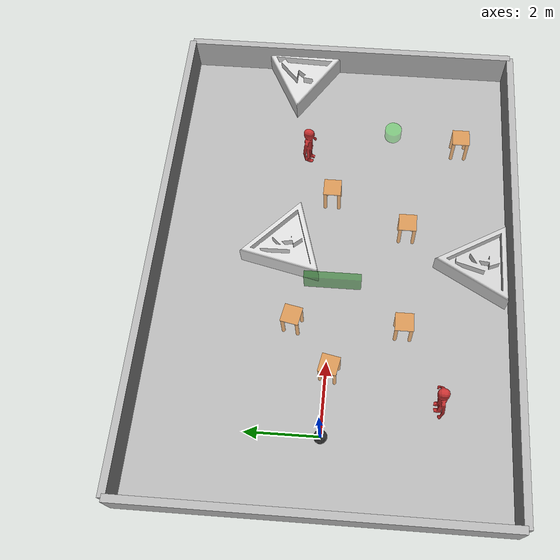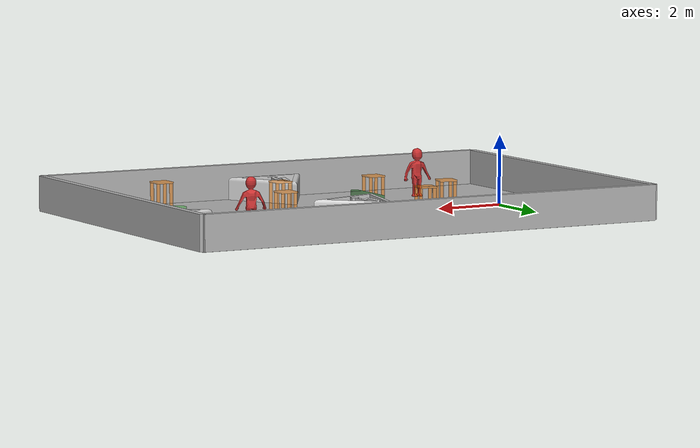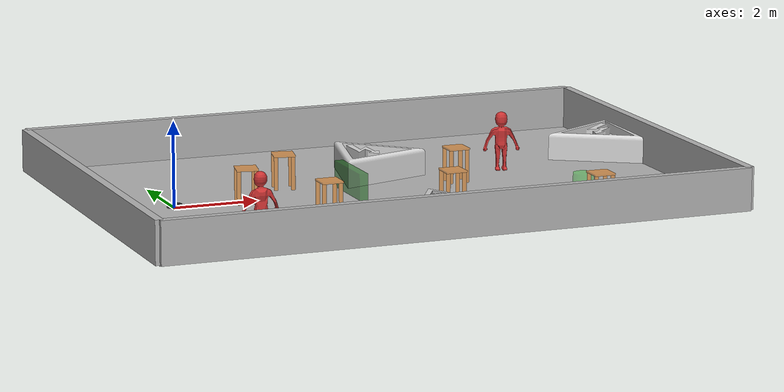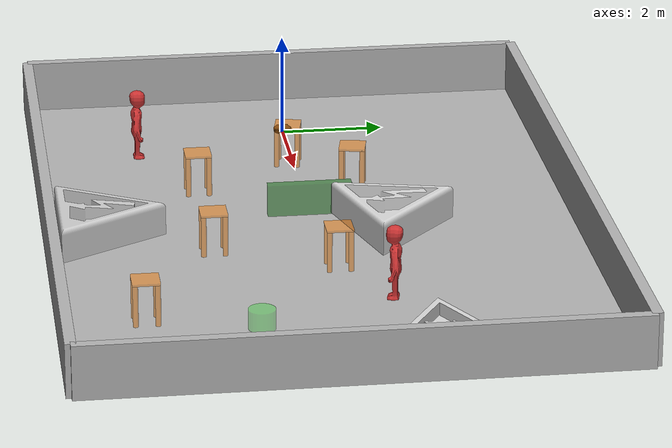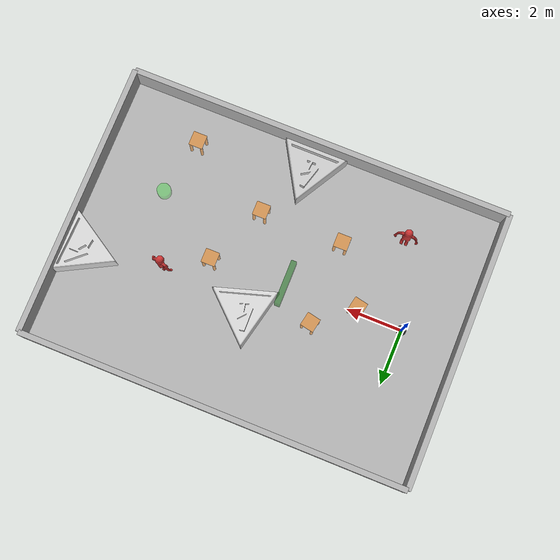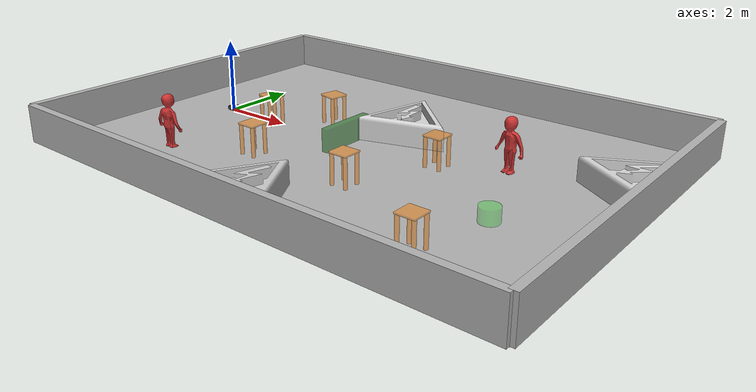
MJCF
<mujoco model="jackal_safe_navigation">
	<compiler angle="radian" meshdir="meshes/" />

    <size njmax="3000" nconmax="1000" />
    <option gravity="0 0 -9.8"/>
	<option timestep="0.002">
		<flag warmstart="enable"></flag>
	</option>

    <default>
        <geom condim="6" density="5" rgba="0.7 0.7 0.7 1" size=".05" type="sphere"/>
        <joint damping=".001"/>
        <site size="0.032" type="sphere"/>
        <velocity ctrlrange="-1 1" ctrllimited="true" forcerange="-1 1" forcelimited="true"/>
    </default>

    <asset>
        <!--Meshes-->
        <mesh name="base" file="tbot.stl" />
        <mesh name="triangle_mesh" file="triangle.stl"/>
        <mesh name="person" file="person4.stl"/>

        <!--Textures-->
        <texture name="floor_tex"   type="2d" builtin="checker" rgb1="0.7 0.7 0.7" rgb2="0.9 0.9 0.9" width="100" height="100" />

        <!--Materials-->
        <material name="floor_mat" texture="floor_tex" shininess="0.3" texrepeat="7 5" specular="0.5" reflectance="0.2" />
        <material name="wall_mat" rgba="0.7 0.7 0.7 1" shininess="0.8" specular="0.7" reflectance="0.5" />
        <material name="bench_mat" texture="floor_tex" shininess="0.1" specular="0.5" reflectance="0.2"/>
    </asset>

	<worldbody>
		<light directional="true" ambient="0.2 0.2 0.2" diffuse="0.4 0.4 0.4" specular="0.1 0.1 0.1" castshadow="false" pos="0 0 4" dir="0 0 -1" name="light0" />

        <!-- Floor Property -->
        <geom name='floor' material="floor_mat" pos='5 0 0' size='7.0 5.0 0.1'  type='plane' condim="3"/>

        <!-- Wall Property -->
        <geom name='wall1' material="wall_mat" pos='5.0 5 0.5' size='7 0.1 0.5'  type='box' condim="6" group="2"/>
        <geom name='wall2' material="wall_mat" pos='5.0 -5 0.5' size='7 0.1 0.5'  type='box' condim="6" group="2"/>
        <geom name='wall3' material="wall_mat" pos='12 0 0.5' size='0.1 5 0.5'  type='box' condim="6" group="2"/>
        <geom name='wall4' material="wall_mat" pos='-2.0 0 0.5' size='0.1 5 0.5' type='box' condim="6" group="2"/>

		<!-- camera: front view -->
		<camera mode="fixed" name="frontview" pos="3.0 0 1.85" quat="0.56 0.43 0.43 0.56"/>

		<!-- Robot -->
		<body name="robot" pos="0 0 0.06344">
            <site name="robot" pos="0 0 0"/>
            <joint type="free" name="robot" damping="0"/>

            <geom pos="0 0 0" quat="1 0 0 0" type="mesh" contype="0" conaffinity="0" group="1" rgba="0.15 0.15 0.15 1" mesh="base"/>

            <geom name="robot" size="0.18 0.2" pos="0 0 0.15" type="cylinder" rgba="0.2 0.2 0.2 1" group="5" mass="4.0"/>

            <body name="left" pos="0.0 0.1 0.0345">
                <joint type="hinge" name="left" axis="0 1 0"/>
                <geom type="cylinder" name="left" size="0.098 0.02" quat="0.707107 0.707107 0 0" rgba="0.2 0.2 0.2 0" group="1" condim="4" mass=".5"/>
            </body>

            <body name="right" pos="0.0 -0.1 0.0345">
                <joint type="hinge" name="right" axis="0 1 0"/>
                <geom type="cylinder" name="right" size="0.098 0.02" quat="0.707107 0.707107 0 0" rgba="0.2 0.2 0.2 0" group="1" condim="4" mass=".5"/>
            </body>

            <body name="front" pos="0.131 0 -0.0155">
                <joint name="front" type="ball"/>
                <geom name="front" size="0.048" group="1" mass=".5"/>
            </body>
            <body name="rear" pos="-0.131 0 -0.0155">
                <joint name="rear" type="ball"/>
                <geom name="rear" size="0.048" group="1" mass=".5"/>
            </body>
		</body>

    <body name="chair" pos="3 1 0.4" quat="0.1 0 0 1">
        <joint type="free" name="chair" damping="0"/>
        <!-- Top square of the chair -->
        <body name="top_square" pos="0 0 0.4">
            <geom type="box" size="0.25 0.25 0.02" rgba="1 .5 0 0.5" mass="2" group="2"/>
        </body>
        <!-- Leg 1 -->
        <body name="leg1" pos="-0.2 -0.2 0">
            <joint name="leg1_joint" type="ball" range="0 0"/>
            <geom type="cylinder" size="0.05 0.4" rgba="1 .5 0 0.5" mass="0.5" group="2"/>
        </body>
        <!-- Leg 2 -->
        <body name="leg2" pos="0.2 -0.2 0">
            <joint name="leg2_joint" type="ball" range="0 0"/>
            <geom type="cylinder" size="0.05 0.4" rgba="1 .5 0 0.5" mass="0.5" group="2"/>
        </body>
        <!-- Leg 3 -->
        <body name="leg3" pos="-0.2 0.2 0">
            <joint name="leg3_joint" type="ball" range="0 0"/>
            <geom type="cylinder" size="0.05 0.4" rgba="1 .5 0 0.5" mass="0.5" group="2"/>
        </body>
        <!-- Leg 4 -->
        <body name="leg4" pos="0.2 0.2 0">
            <joint name="leg4_joint" type="ball" range="0 0"/>
            <geom type="cylinder" size="0.05 0.4" rgba="1 .5 0 0.5" mass="0.5" group="2"/>
        </body>
    </body>

    <body name="chair2" pos="1.7 -0.1 0.4" quat="0.1 0 0 1">
        <joint type="free" name="chair2" damping="0"/>
        <!-- Top square of the chair -->
        <body name="top_square2" pos="0 0 0.4">
            <geom type="box" size="0.25 0.25 0.02" rgba="1 .5 0 0.5" mass="2" group="2"/>
        </body>
        <!-- Leg 1 -->
        <body name="leg12" pos="-0.2 -0.2 0">
            <joint name="leg12_joint" type="ball" range="0 0"/>
            <geom type="cylinder" size="0.05 0.4" rgba="1 .5 0 0.5" mass="0.5" group="2"/>
        </body>
        <!-- Leg 2 -->
        <body name="leg22" pos="0.2 -0.2 0">
            <joint name="leg22_joint" type="ball" range="0 0"/>
            <geom type="cylinder" size="0.05 0.4" rgba="1 .5 0 0.5" mass="0.5" group="2"/>
        </body>
        <!-- Leg 3 -->
        <body name="leg32" pos="-0.2 0.2 0">
            <joint name="leg32_joint" type="ball" range="0 0"/>
            <geom type="cylinder" size="0.05 0.4" rgba="1 .5 0 0.5" mass="0.5" group="2"/>
        </body>
        <!-- Leg 4 -->
        <body name="leg42" pos="0.2 0.2 0">
            <joint name="leg42_joint" type="ball" range="0 0"/>
            <geom type="cylinder" size="0.05 0.4" rgba="1 .5 0 0.5" mass="0.5" group="2"/>
        </body>
    </body>

        <body name="box1" pos="4.3 0.0 0.2">
            <site name="box1" pos="0 0 0" rgba="0 0 1 0"/>
            <joint type="free" name="box1" frictionloss="0" damping="0" />
            <geom name="box1" type="box" size="0.1 0.8 0.4" rgba="0 .4 0 0.5" mass="0.1" group="2"/>
        </body>

        <body name="person" pos="8.5 1 0">
            <joint type="free"/>
            <geom type="mesh" mesh="person" rgba="0.8 0.2 0.2 1" quat="-8 0.0 0.0 1.0" mass="1" group="2"/>
        </body>

        <body name="person2" pos="1 -3 0">
            <joint type="free"/>
            <geom type="mesh" mesh="person" rgba="0.8 0.2 0.2 1" quat="0.0 0.0 0.0 1.0" mass="1" group="2"/>
        </body>

    <body name="chair3" pos="3 -2 0.4">
        <joint type="free" name="chair3" damping="0"/>
        <!-- Top square of the chair -->
        <body name="top_square3" pos="0 0 0.4">
            <geom type="box" size="0.25 0.25 0.02" rgba="1 .5 0 0.5" mass="2" group="2"/>
        </body>
        <!-- Leg 1 -->
        <body name="leg13" pos="-0.2 -0.2 0">
            <joint name="leg13_joint" type="ball" range="0 0"/>
            <geom type="cylinder" size="0.05 0.4" rgba="1 .5 0 0.5" mass="0.5" group="2"/>
        </body>
        <!-- Leg 2 -->
        <body name="leg23" pos="0.2 -0.2 0">
            <joint name="leg23_joint" type="ball" range="0 0"/>
            <geom type="cylinder" size="0.05 0.4" rgba="1 .5 0 0.5" mass="0.5" group="2"/>
        </body>
        <!-- Leg 3 -->
        <body name="leg33" pos="-0.2 0.2 0">
            <joint name="leg33_joint" type="ball" range="0 0"/>
            <geom type="cylinder" size="0.05 0.4" rgba="1 .5 0 0.5" mass="0.5" group="2"/>
        </body>
        <!-- Leg 4 -->
        <body name="leg43" pos="0.2 0.2 0">
            <joint name="leg43_joint" type="ball" range="0 0"/>
            <geom type="cylinder" size="0.05 0.4" rgba="1 .5 0 0.5" mass="0.5" group="2"/>
        </body>
    </body>

    <body name="chair4" pos="7 0.2 0.4">
        <joint type="free" name="chair4" damping="0"/>
        <!-- Top square of the chair -->
        <body name="top_square4" pos="0 0 0.4">
            <geom type="box" size="0.25 0.25 0.02" rgba="1 .5 0 0.5" mass="2" group="2"/>
        </body>
        <!-- Leg 1 -->
        <body name="leg14" pos="-0.2 -0.2 0">
            <joint name="leg14_joint" type="ball" range="0 0"/>
            <geom type="cylinder" size="0.05 0.4" rgba="1 .5 0 0.5" mass="0.5" group="2"/>
        </body>
        <!-- Leg 2 -->
        <body name="leg24" pos="0.2 -0.2 0">
            <joint name="leg24_joint" type="ball" range="0 0"/>
            <geom type="cylinder" size="0.05 0.4" rgba="1 .5 0 0.5" mass="0.5" group="2"/>
        </body>
        <!-- Leg 3 -->
        <body name="leg34" pos="-0.2 0.2 0">
            <joint name="leg34_joint" type="ball" range="0 0"/>
            <geom type="cylinder" size="0.05 0.4" rgba="1 .5 0 0.5" mass="0.5" group="2"/>
        </body>
        <!-- Leg 4 -->
        <body name="leg44" pos="0.2 0.2 0">
            <joint name="leg44_joint" type="ball" range="0 0"/>
            <geom type="cylinder" size="0.05 0.4" rgba="1 .5 0 0.5" mass="0.5" group="2"/>
        </body>
    </body>

    <body name="chair5" pos="6 -2 0.4">
        <joint type="free" name="chair5" damping="0"/>
        <!-- Top square of the chair -->
        <body name="top_square5" pos="0 0 0.4">
            <geom type="box" size="0.25 0.25 0.02" rgba="1 .5 0 0.5" mass="2" group="2"/>
        </body>
        <!-- Leg 1 -->
        <body name="leg15" pos="-0.2 -0.2 0">
            <joint name="leg15_joint" type="ball" range="0 0"/>
            <geom type="cylinder" size="0.05 0.4" rgba="1 .5 0 0.5" mass="0.5" group="2"/>
        </body>
        <!-- Leg 2 -->
        <body name="leg25" pos="0.2 -0.2 0">
            <joint name="leg25_joint" type="ball" range="0 0"/>
            <geom type="cylinder" size="0.05 0.4" rgba="1 .5 0 0.5" mass="0.5" group="2"/>
        </body>
        <!-- Leg 3 -->
        <body name="leg35" pos="-0.2 0.2 0">
            <joint name="leg35_joint" type="ball" range="0 0"/>
            <geom type="cylinder" size="0.05 0.4" rgba="1 .5 0 0.5" mass="0.5" group="2"/>
        </body>
        <!-- Leg 4 -->
        <body name="leg45" pos="0.2 0.2 0">
            <joint name="leg45_joint" type="ball" range="0 0"/>
            <geom type="cylinder" size="0.05 0.4" rgba="1 .5 0 0.5" mass="0.5" group="2"/>
        </body>
    </body>

    <body name="chair6" pos="9 -3.5 0.4">
        <joint type="free" name="chair6" damping="0"/>
        <!-- Top square of the chair -->
        <body name="top_square6" pos="0 0 0.4">
            <geom type="box" size="0.25 0.25 0.02" rgba="1 .5 0 0.5" mass="2" group="2"/>
        </body>
        <!-- Leg 1 -->
        <body name="leg16" pos="-0.2 -0.2 0">
            <joint name="leg16_joint" type="ball" range="0 0"/>
            <geom type="cylinder" size="0.05 0.4" rgba="1 .5 0 0.5" mass="0.5" group="2"/>
        </body>
        <!-- Leg 2 -->
        <body name="leg26" pos="0.2 -0.2 0">
            <joint name="leg26_joint" type="ball" range="0 0"/>
            <geom type="cylinder" size="0.05 0.4" rgba="1 .5 0 0.5" mass="0.5" group="2"/>
        </body>
        <!-- Leg 3 -->
        <body name="leg36" pos="-0.2 0.2 0">
            <joint name="leg36_joint" type="ball" range="0 0"/>
            <geom type="cylinder" size="0.05 0.4" rgba="1 .5 0 0.5" mass="0.5" group="2"/>
        </body>
        <!-- Leg 4 -->
        <body name="leg46" pos="0.2 0.2 0">
            <joint name="leg46_joint" type="ball" range="0 0"/>
            <geom type="cylinder" size="0.05 0.4" rgba="1 .5 0 0.5" mass="0.5" group="2"/>
        </body>
    </body>

        <body name="triangle" pos="6.2 -2.8 0">
            <joint type="free"/>
            <geom type="mesh" mesh="triangle_mesh" rgba="0.8 0.8 0.8 1" quat="0.0 0.0 0.0 1.0" mass="1" group="2"/>
        </body>

        <body name="triangle2" pos="6 3 0">
            <joint type="free"/>
            <geom type="mesh" mesh="triangle_mesh" rgba="0.85 0.85 0.85 1" quat="-0.15 0 0 1" mass="1" group="2"/>
        </body>

        <body name="triangle3" pos="13 2 0">
            <joint type="free"/>
            <geom type="mesh" mesh="triangle_mesh" rgba="0.85 0.85 0.85 1" quat="0.2763556485641138 0.0 0.0 0.961055438310771" mass="1" group="2"/>
        </body>

        <!-- goal -->
        <body name="goal" pos="9.5 -1.5 .1">
            <site name="goal" pos="0 0 0" rgba="0 0 1 0"/>
            <joint type="free" name="goal" frictionloss="0" damping="0" />
            <geom type="cylinder" size="0.25 0.25 0.25" contype="0" conaffinity="0" group="1" rgba="0 0.9 0 0.3" mass="0.1"/>
        </body>

	</worldbody>

    <sensor>
        <!-- Used for observation -->
        <accelerometer site="robot" name="accelerometer"/>
        <velocimeter site="robot" name="velocimeter"/>
        <gyro site="robot" name="gyro"/>
    </sensor>

    <!--ACTUATORS-->
    <actuator>

        <motor gear="0.7 0 0 0 0 0" joint="left" name="left"/>
        <motor gear="0.7 0 0 0 0 0" joint="right" name="right"/>

    </actuator>
</mujoco>
